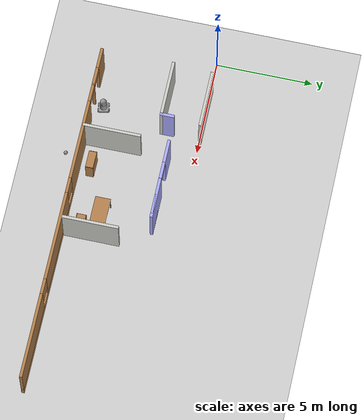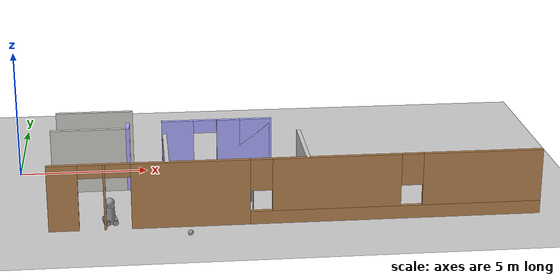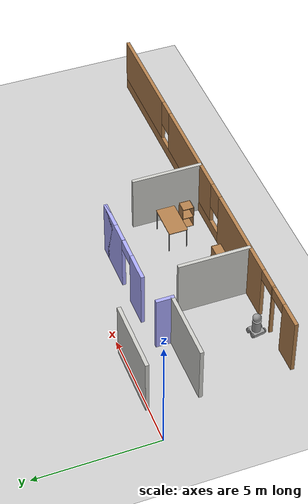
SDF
<sdf version="1.6">
 <world name="default">
  <model name="ground_plane">
   <static>1</static>
   <link name="link">
    <collision name="collision">
     <geometry><plane><normal>0 0 1</normal><size>100 100</size></plane></geometry>
     <surface>
      <contact><collide_bitmask>65535</collide_bitmask></contact>
      <friction><ode><mu>100</mu><mu2>50</mu2></ode></friction>
     </surface>
    </collision>
    <visual name="visual">
     <cast_shadows>0</cast_shadows>
     <geometry><plane><normal>0 0 1</normal><size>100 100</size></plane></geometry>
     <material>
      <script><uri>file://media/materials/scripts/gazebo.material</uri><name>Gazebo/Grey</name></script>
     </material>
    </visual>
   </link>
  </model>
  <model name="newOffice">
   <pose>10.3935 1.72643 0 0 -0 0</pose>
   <link name="Wall_1">
    <pose>0.004022 -7.44365 0 0 -0 0</pose>
    <visual name="Wall_1_Visual_0">
     <pose>-8.45097 0 1.25 0 -0 0</pose>
     <geometry><box><size>1.09805 0.15 2.5</size></box></geometry>
     <material>
      <script><uri>file://media/materials/scripts/gazebo.material</uri><name>Gazebo/Wood</name></script>
      <ambient>1 0.666667 1 1</ambient>
     </material>
     <meta><layer>0</layer></meta>
    </visual>
    <collision name="Wall_1_Collision_0">
     <geometry><box><size>1.09805 0.15 2.5</size></box></geometry>
     <pose>-8.45097 0 1.25 0 -0 0</pose>
    </collision>
    <visual name="Wall_1_Visual_1">
     <pose>-6.96251 0 1.25 0 -0 0</pose>
     <geometry><box><size>0.078887 0.15 2.5</size></box></geometry>
     <material>
      <script><uri>file://media/materials/scripts/gazebo.material</uri><name>Gazebo/Wood</name></script>
      <ambient>1 0.666667 1 1</ambient>
     </material>
     <meta><layer>0</layer></meta>
    </visual>
    <collision name="Wall_1_Collision_1">
     <geometry><box><size>0.078887 0.15 2.5</size></box></geometry>
     <pose>-6.96251 0 1.25 0 -0 0</pose>
    </collision>
    <visual name="Wall_1_Visual_2">
     <pose>-3.87848 0 1.25 0 -0 0</pose>
     <geometry><box><size>4.28916 0.15 2.5</size></box></geometry>
     <material>
      <script><uri>file://media/materials/scripts/gazebo.material</uri><name>Gazebo/Wood</name></script>
      <ambient>1 0.666667 1 1</ambient>
     </material>
     <meta><layer>0</layer></meta>
    </visual>
    <collision name="Wall_1_Collision_2">
     <geometry><box><size>4.28916 0.15 2.5</size></box></geometry>
     <pose>-3.87848 0 1.25 0 -0 0</pose>
    </collision>
    <visual name="Wall_1_Visual_3">
     <pose>3.63305 0 0.25 0 -0 0</pose>
     <geometry><box><size>10.7339 0.15 0.5</size></box></geometry>
     <material>
      <script><uri>file://media/materials/scripts/gazebo.material</uri><name>Gazebo/Wood</name></script>
      <ambient>1 0.666667 1 1</ambient>
     </material>
     <meta><layer>0</layer></meta>
    </visual>
    <collision name="Wall_1_Collision_3">
     <geometry><box><size>10.7339 0.15 0.5</size></box></geometry>
     <pose>3.63305 0 0.25 0 -0 0</pose>
    </collision>
    <visual name="Wall_1_Visual_4">
     <pose>1.41922 0 1.5 0 -0 0</pose>
     <geometry><box><size>4.70624 0.15 2</size></box></geometry>
     <material>
      <script><uri>file://media/materials/scripts/gazebo.material</uri><name>Gazebo/Wood</name></script>
      <ambient>1 0.666667 1 1</ambient>
     </material>
     <meta><layer>0</layer></meta>
    </visual>
    <collision name="Wall_1_Collision_4">
     <geometry><box><size>4.70624 0.15 2</size></box></geometry>
     <pose>1.41922 0 1.5 0 -0 0</pose>
    </collision>
    <visual name="Wall_1_Visual_5">
     <pose>6.78617 0 1.5 0 -0 0</pose>
     <geometry><box><size>4.42766 0.15 2</size></box></geometry>
     <material>
      <script><uri>file://media/materials/scripts/gazebo.material</uri><name>Gazebo/Wood</name></script>
      <ambient>1 0.666667 1 1</ambient>
     </material>
     <meta><layer>0</layer></meta>
    </visual>
    <collision name="Wall_1_Collision_5">
     <geometry><box><size>4.42766 0.15 2</size></box></geometry>
     <pose>6.78617 0 1.5 0 -0 0</pose>
    </collision>
    <visual name="Wall_1_Visual_6">
     <pose>-1.3339 0 1.9 0 -0 0</pose>
     <geometry><box><size>0.8 0.15 1.2</size></box></geometry>
     <material>
      <script><uri>file://media/materials/scripts/gazebo.material</uri><name>Gazebo/Wood</name></script>
      <ambient>1 0.666667 1 1</ambient>
     </material>
     <meta><layer>0</layer></meta>
    </visual>
    <collision name="Wall_1_Collision_6">
     <geometry><box><size>0.8 0.15 1.2</size></box></geometry>
     <pose>-1.3339 0 1.9 0 -0 0</pose>
    </collision>
    <visual name="Wall_1_Visual_7">
     <pose>4.17234 0 1.9 0 -0 0</pose>
     <geometry><box><size>0.8 0.15 1.2</size></box></geometry>
     <material>
      <script><uri>file://media/materials/scripts/gazebo.material</uri><name>Gazebo/Wood</name></script>
      <ambient>1 0.666667 1 1</ambient>
     </material>
     <meta><layer>0</layer></meta>
    </visual>
    <collision name="Wall_1_Collision_7">
     <geometry><box><size>0.8 0.15 1.2</size></box></geometry>
     <pose>4.17234 0 1.9 0 -0 0</pose>
    </collision>
    <visual name="Wall_1_Visual_8">
     <pose>-7.45195 0 2.25 0 -0 0</pose>
     <geometry><box><size>0.9 0.15 0.5</size></box></geometry>
     <material>
      <script><uri>file://media/materials/scripts/gazebo.material</uri><name>Gazebo/Wood</name></script>
      <ambient>1 0.666667 1 1</ambient>
     </material>
     <meta><layer>0</layer></meta>
    </visual>
    <collision name="Wall_1_Collision_8">
     <geometry><box><size>0.9 0.15 0.5</size></box></geometry>
     <pose>-7.45195 0 2.25 0 -0 0</pose>
    </collision>
    <visual name="Wall_1_Visual_9">
     <pose>-6.47306 0 2.25 0 -0 0</pose>
     <geometry><box><size>0.9 0.15 0.5</size></box></geometry>
     <material>
      <script><uri>file://media/materials/scripts/gazebo.material</uri><name>Gazebo/Wood</name></script>
      <ambient>1 0.666667 1 1</ambient>
     </material>
     <meta><layer>0</layer></meta>
    </visual>
    <collision name="Wall_1_Collision_9">
     <geometry><box><size>0.9 0.15 0.5</size></box></geometry>
     <pose>-6.47306 0 2.25 0 -0 0</pose>
    </collision>
   </link>
   <link name="Wall_21">
    <collision name="Wall_21_Collision">
     <geometry><box><size>3 0.15 2.5</size></box></geometry>
     <pose>0 0 1.25 0 -0 0</pose>
    </collision>
    <visual name="Wall_21_Visual">
     <pose>0 0 1.25 0 -0 0</pose>
     <geometry><box><size>3 0.15 2.5</size></box></geometry>
     <material>
      <script><uri>file://media/materials/scripts/gazebo.material</uri><name>Gazebo/CeilingTiled</name></script>
      <ambient>0.760784 0.662745 0.627451 1</ambient>
     </material>
     <meta><layer>0</layer></meta>
    </visual>
    <pose>-7.38915 -1.6804 0 0 -0 3.14159</pose>
   </link>
   <link name="Wall_25">
    <collision name="Wall_25_Collision">
     <geometry><box><size>3 0.15 2.5</size></box></geometry>
     <pose>0 0 1.25 0 -0 0</pose>
    </collision>
    <visual name="Wall_25_Visual">
     <pose>0 0 1.25 0 -0 0</pose>
     <geometry><box><size>3 0.15 2.5</size></box></geometry>
     <material>
      <script><uri>file://media/materials/scripts/gazebo.material</uri><name>Gazebo/CeilingTiled</name></script>
      <ambient>0.760784 0.662745 0.627451 1</ambient>
     </material>
     <meta><layer>0</layer></meta>
    </visual>
    <pose>-7.51668 -3.72208 0 0 -0 0</pose>
   </link>
   <link name="Wall_26">
    <collision name="Wall_26_Collision">
     <geometry><box><size>0.75 0.15 2.5</size></box></geometry>
     <pose>0 0 1.25 0 -0 0</pose>
    </collision>
    <visual name="Wall_26_Visual">
     <pose>0 0 1.25 0 -0 0</pose>
     <geometry><box><size>0.75 0.15 2.5</size></box></geometry>
     <material>
      <script><uri>file://media/materials/scripts/gazebo.material</uri><name>Gazebo/Grey</name></script>
      <ambient>0.666667 0.666667 1 1</ambient>
     </material>
     <meta><layer>0</layer></meta>
    </visual>
    <pose>-6.09169 -3.42209 0 0 -0 1.5708</pose>
   </link>
   <link name="Wall_29">
    <pose>-2.65801 -3.02959 0 0 -0 0</pose>
    <visual name="Wall_29_Visual_0">
     <pose>-1.51055 0 1.25 0 -0 0</pose>
     <geometry><box><size>1.2289 0.15 2.5</size></box></geometry>
     <material>
      <script><uri>file://media/materials/scripts/gazebo.material</uri><name>Gazebo/Grey</name></script>
      <ambient>0.666667 0.666667 1 1</ambient>
     </material>
     <meta><layer>0</layer></meta>
    </visual>
    <collision name="Wall_29_Collision_0">
     <geometry><box><size>1.2289 0.15 2.5</size></box></geometry>
     <pose>-1.51055 0 1.25 0 -0 0</pose>
    </collision>
    <visual name="Wall_29_Visual_1">
     <pose>1.06445 0 1.25 0 -0 0</pose>
     <geometry><box><size>2.1211 0.15 2.5</size></box></geometry>
     <material>
      <script><uri>file://media/materials/scripts/gazebo.material</uri><name>Gazebo/Grey</name></script>
      <ambient>0.666667 0.666667 1 1</ambient>
     </material>
     <meta><layer>0</layer></meta>
    </visual>
    <collision name="Wall_29_Collision_1">
     <geometry><box><size>2.1211 0.15 2.5</size></box></geometry>
     <pose>1.06445 0 1.25 0 -0 0</pose>
    </collision>
    <visual name="Wall_29_Visual_2">
     <pose>1.50801 0 1.25 0 -0 0</pose>
     <geometry><box><size>1.23399 0.15 2.5</size></box></geometry>
     <material>
      <script><uri>file://media/materials/scripts/gazebo.material</uri><name>Gazebo/Grey</name></script>
      <ambient>0.666667 0.666667 1 1</ambient>
     </material>
     <meta><layer>0</layer></meta>
    </visual>
    <collision name="Wall_29_Collision_2">
     <geometry><box><size>1.23399 0.15 2.5</size></box></geometry>
     <pose>1.50801 0 1.25 0 -0 0</pose>
    </collision>
    <visual name="Wall_29_Visual_3">
     <pose>-0.452546 0 2.25 0 -0 0</pose>
     <geometry><box><size>0.887117 0.15 0.5</size></box></geometry>
     <material>
      <script><uri>file://media/materials/scripts/gazebo.material</uri><name>Gazebo/Grey</name></script>
      <ambient>0.666667 0.666667 1 1</ambient>
     </material>
     <meta><layer>0</layer></meta>
    </visual>
    <collision name="Wall_29_Collision_3">
     <geometry><box><size>0.887117 0.15 0.5</size></box></geometry>
     <pose>-0.452546 0 2.25 0 -0 0</pose>
    </collision>
   </link>
   <link name="Wall_45">
    <collision name="Wall_45_Collision">
     <geometry><box><size>3 0.15 2.5</size></box></geometry>
     <pose>0 0 1.25 0 -0 0</pose>
    </collision>
    <visual name="Wall_45_Visual">
     <pose>0 0 1.25 0 -0 0</pose>
     <geometry><box><size>3 0.15 2.5</size></box></geometry>
     <material>
      <script><uri>file://media/materials/scripts/gazebo.material</uri><name>Gazebo/CeilingTiled</name></script>
      <ambient>0.760784 0.662745 0.627451 1</ambient>
     </material>
     <meta><layer>0</layer></meta>
    </visual>
    <pose>-4.70801 -5.97248 0 0 -0 1.5708</pose>
   </link>
   <link name="Wall_56">
    <collision name="Wall_56_Collision">
     <geometry><box><size>3 0.15 2.5</size></box></geometry>
     <pose>0 0 1.25 0 -0 0</pose>
    </collision>
    <visual name="Wall_56_Visual">
     <pose>0 0 1.25 0 -0 0</pose>
     <geometry><box><size>3 0.15 2.5</size></box></geometry>
     <material>
      <script><uri>file://media/materials/scripts/gazebo.material</uri><name>Gazebo/CeilingTiled</name></script>
      <ambient>0.760784 0.662745 0.627451 1</ambient>
     </material>
     <meta><layer>0</layer></meta>
    </visual>
    <pose>0.363098 -5.98452 0 0 0 -1.5708</pose>
   </link>
   <static>1</static>
  </model>
  <model name="miniRobo_clone_0">
   <link name="link_0">
    <pose>0 0 -0.145 0 -0 0</pose>
    <inertial>
     <mass>1</mass>
     <inertia>
      <ixx>0.166667</ixx>
      <ixy>0</ixy>
      <ixz>0</ixz>
      <iyy>0.166667</iyy>
      <iyz>0</iyz>
      <izz>0.166667</izz>
     </inertia>
    </inertial>
    <visual name="visual">
     <geometry><box><size>0.5 0.5 0.125</size></box></geometry>
     <material>
      <lighting>1</lighting>
      <script><uri>file://media/materials/scripts/gazebo.material</uri><name>Gazebo/Grey</name></script>
      <shader type="pixel"><normal_map>__default__</normal_map></shader>
      <ambient>0.3 0.3 0.3 1</ambient>
      <diffuse>0.7 0.7 0.7 1</diffuse>
      <specular>0.01 0.01 0.01 1</specular>
      <emissive>0 0 0 1</emissive>
     </material>
    </visual>
    <collision name="collision">
     <geometry><box><size>0.5 0.5 0.125</size></box></geometry>
     <surface>
      <friction>
       <ode><mu>1</mu><mu2>1</mu2><fdir1>0 0 0</fdir1><slip1>0</slip1><slip2>0</slip2></ode>
       <torsional>
        <coefficient>1</coefficient>
        <patch_radius>0</patch_radius>
        <surface_radius>0</surface_radius>
        <use_patch_radius>1</use_patch_radius>
        <ode><slip>0</slip></ode>
       </torsional>
      </friction>
      <bounce><restitution_coefficient>0</restitution_coefficient><threshold>1e+06</threshold></bounce>
      <contact>
       <collide_without_contact>0</collide_without_contact>
       <collide_without_contact_bitmask>1</collide_without_contact_bitmask>
       <collide_bitmask>1</collide_bitmask>
       <ode>
        <soft_cfm>0</soft_cfm>
        <soft_erp>0.2</soft_erp>
        <kp>1e+13</kp>
        <kd>1</kd>
        <max_vel>0.01</max_vel>
        <min_depth>0</min_depth>
       </ode>
       <bullet>
        <split_impulse>1</split_impulse>
        <split_impulse_penetration_threshold>-0.01</split_impulse_penetration_threshold>
        <soft_cfm>0</soft_cfm>
        <soft_erp>0.2</soft_erp>
        <kp>1e+13</kp>
        <kd>1</kd>
       </bullet>
      </contact>
     </surface>
    </collision>
   </link>
   <link name="link_1_clone">
    <pose>0.15 -0.27501 -0.145 0 -0 0</pose>
    <inertial>
     <mass>1</mass>
     <inertia><ixx>0.145833</ixx><ixy>0</ixy><ixz>0</ixz><iyy>0.145833</iyy><iyz>0</iyz><izz>0.125</izz></inertia>
    </inertial>
    <visual name="visual">
     <pose>0 0 0 1.5707 -0 0</pose>
     <geometry><cylinder><radius>0.1</radius><length>0.05</length></cylinder></geometry>
     <material>
      <lighting>1</lighting>
      <script><uri>file://media/materials/scripts/gazebo.material</uri><name>Gazebo/Grey</name></script>
      <shader type="pixel"><normal_map>__default__</normal_map></shader>
      <ambient>0.3 0.3 0.3 1</ambient>
      <diffuse>0.7 0.7 0.7 1</diffuse>
      <specular>0.01 0.01 0.01 1</specular>
      <emissive>0 0 0 1</emissive>
     </material>
    </visual>
    <collision name="collision">
     <pose>0 0 0 1.5707 -0 0</pose>
     <geometry><cylinder><radius>0.1</radius><length>0.05</length></cylinder></geometry>
     <surface>
      <friction>
       <ode><mu>1</mu><mu2>1</mu2><fdir1>0 0 0</fdir1><slip1>0</slip1><slip2>0</slip2></ode>
       <torsional>
        <coefficient>1</coefficient>
        <patch_radius>0</patch_radius>
        <surface_radius>0</surface_radius>
        <use_patch_radius>1</use_patch_radius>
        <ode><slip>0</slip></ode>
       </torsional>
      </friction>
      <bounce><restitution_coefficient>0</restitution_coefficient><threshold>1e+06</threshold></bounce>
      <contact>
       <collide_without_contact>0</collide_without_contact>
       <collide_without_contact_bitmask>1</collide_without_contact_bitmask>
       <collide_bitmask>1</collide_bitmask>
       <ode>
        <soft_cfm>0</soft_cfm>
        <soft_erp>0.2</soft_erp>
        <kp>1e+13</kp>
        <kd>1</kd>
        <max_vel>0.01</max_vel>
        <min_depth>0</min_depth>
       </ode>
       <bullet>
        <split_impulse>1</split_impulse>
        <split_impulse_penetration_threshold>-0.01</split_impulse_penetration_threshold>
        <soft_cfm>0</soft_cfm>
        <soft_erp>0.2</soft_erp>
        <kp>1e+13</kp>
        <kd>1</kd>
       </bullet>
      </contact>
     </surface>
    </collision>
   </link>
   <link name="link_1_clone_0">
    <pose>-0.15 0.27501 -0.145 0 -0 0</pose>
    <inertial>
     <mass>1</mass>
     <inertia><ixx>0.145833</ixx><ixy>0</ixy><ixz>0</ixz><iyy>0.145833</iyy><iyz>0</iyz><izz>0.125</izz></inertia>
    </inertial>
    <visual name="visual">
     <pose>0 0 0 1.5707 -0 0</pose>
     <geometry><cylinder><radius>0.1</radius><length>0.05</length></cylinder></geometry>
     <material>
      <lighting>1</lighting>
      <script><uri>file://media/materials/scripts/gazebo.material</uri><name>Gazebo/Grey</name></script>
      <shader type="pixel"><normal_map>__default__</normal_map></shader>
      <ambient>0.3 0.3 0.3 1</ambient>
      <diffuse>0.7 0.7 0.7 1</diffuse>
      <specular>0.01 0.01 0.01 1</specular>
      <emissive>0 0 0 1</emissive>
     </material>
    </visual>
    <collision name="collision">
     <pose>0 0 0 1.5707 -0 0</pose>
     <geometry><cylinder><radius>0.1</radius><length>0.05</length></cylinder></geometry>
     <surface>
      <friction>
       <ode><mu>1</mu><mu2>1</mu2><fdir1>0 0 0</fdir1><slip1>0</slip1><slip2>0</slip2></ode>
       <torsional>
        <coefficient>1</coefficient>
        <patch_radius>0</patch_radius>
        <surface_radius>0</surface_radius>
        <use_patch_radius>1</use_patch_radius>
        <ode><slip>0</slip></ode>
       </torsional>
      </friction>
      <bounce><restitution_coefficient>0</restitution_coefficient><threshold>1e+06</threshold></bounce>
      <contact>
       <collide_without_contact>0</collide_without_contact>
       <collide_without_contact_bitmask>1</collide_without_contact_bitmask>
       <collide_bitmask>1</collide_bitmask>
       <ode>
        <soft_cfm>0</soft_cfm>
        <soft_erp>0.2</soft_erp>
        <kp>1e+13</kp>
        <kd>1</kd>
        <max_vel>0.01</max_vel>
        <min_depth>0</min_depth>
       </ode>
       <bullet>
        <split_impulse>1</split_impulse>
        <split_impulse_penetration_threshold>-0.01</split_impulse_penetration_threshold>
        <soft_cfm>0</soft_cfm>
        <soft_erp>0.2</soft_erp>
        <kp>1e+13</kp>
        <kd>1</kd>
       </bullet>
      </contact>
     </surface>
    </collision>
   </link>
   <link name="link_1_clone_1">
    <pose>0.15 0.27501 -0.145 0 -0 0</pose>
    <inertial>
     <mass>1</mass>
     <inertia><ixx>0.145833</ixx><ixy>0</ixy><ixz>0</ixz><iyy>0.145833</iyy><iyz>0</iyz><izz>0.125</izz></inertia>
    </inertial>
    <visual name="visual">
     <pose>0 0 0 1.5707 -0 0</pose>
     <geometry><cylinder><radius>0.1</radius><length>0.05</length></cylinder></geometry>
     <material>
      <lighting>1</lighting>
      <script><uri>file://media/materials/scripts/gazebo.material</uri><name>Gazebo/Grey</name></script>
      <shader type="pixel"><normal_map>__default__</normal_map></shader>
      <ambient>0.3 0.3 0.3 1</ambient>
      <diffuse>0.7 0.7 0.7 1</diffuse>
      <specular>0.01 0.01 0.01 1</specular>
      <emissive>0 0 0 1</emissive>
     </material>
    </visual>
    <collision name="collision">
     <pose>0 0 0 1.5707 -0 0</pose>
     <geometry><cylinder><radius>0.1</radius><length>0.05</length></cylinder></geometry>
     <surface>
      <friction>
       <ode><mu>1</mu><mu2>1</mu2><fdir1>0 0 0</fdir1><slip1>0</slip1><slip2>0</slip2></ode>
       <torsional>
        <coefficient>1</coefficient>
        <patch_radius>0</patch_radius>
        <surface_radius>0</surface_radius>
        <use_patch_radius>1</use_patch_radius>
        <ode><slip>0</slip></ode>
       </torsional>
      </friction>
      <bounce><restitution_coefficient>0</restitution_coefficient><threshold>1e+06</threshold></bounce>
      <contact>
       <collide_without_contact>0</collide_without_contact>
       <collide_without_contact_bitmask>1</collide_without_contact_bitmask>
       <collide_bitmask>1</collide_bitmask>
       <ode>
        <soft_cfm>0</soft_cfm>
        <soft_erp>0.2</soft_erp>
        <kp>1e+13</kp>
        <kd>1</kd>
        <max_vel>0.01</max_vel>
        <min_depth>0</min_depth>
       </ode>
       <bullet>
        <split_impulse>1</split_impulse>
        <split_impulse_penetration_threshold>-0.01</split_impulse_penetration_threshold>
        <soft_cfm>0</soft_cfm>
        <soft_erp>0.2</soft_erp>
        <kp>1e+13</kp>
        <kd>1</kd>
       </bullet>
      </contact>
     </surface>
    </collision>
   </link>
   <link name="link_1_clone_1_clone">
    <pose>-0.15 -0.27501 -0.145 0 -0 0</pose>
    <inertial>
     <mass>1</mass>
     <inertia><ixx>0.145833</ixx><ixy>0</ixy><ixz>0</ixz><iyy>0.145833</iyy><iyz>0</iyz><izz>0.125</izz></inertia>
    </inertial>
    <visual name="visual">
     <pose>0 0 0 1.5707 -0 0</pose>
     <geometry><cylinder><radius>0.1</radius><length>0.05</length></cylinder></geometry>
     <material>
      <lighting>1</lighting>
      <script><uri>file://media/materials/scripts/gazebo.material</uri><name>Gazebo/Grey</name></script>
      <shader type="pixel"><normal_map>__default__</normal_map></shader>
      <ambient>0.3 0.3 0.3 1</ambient>
      <diffuse>0.7 0.7 0.7 1</diffuse>
      <specular>0.01 0.01 0.01 1</specular>
      <emissive>0 0 0 1</emissive>
     </material>
    </visual>
    <collision name="collision">
     <pose>0 0 0 1.5707 -0 0</pose>
     <geometry><cylinder><radius>0.1</radius><length>0.05</length></cylinder></geometry>
     <surface>
      <friction>
       <ode><mu>1</mu><mu2>1</mu2><fdir1>0 0 0</fdir1><slip1>0</slip1><slip2>0</slip2></ode>
       <torsional>
        <coefficient>1</coefficient>
        <patch_radius>0</patch_radius>
        <surface_radius>0</surface_radius>
        <use_patch_radius>1</use_patch_radius>
        <ode><slip>0</slip></ode>
       </torsional>
      </friction>
      <bounce><restitution_coefficient>0</restitution_coefficient><threshold>1e+06</threshold></bounce>
      <contact>
       <collide_without_contact>0</collide_without_contact>
       <collide_without_contact_bitmask>1</collide_without_contact_bitmask>
       <collide_bitmask>1</collide_bitmask>
       <ode>
        <soft_cfm>0</soft_cfm>
        <soft_erp>0.2</soft_erp>
        <kp>1e+13</kp>
        <kd>1</kd>
        <max_vel>0.01</max_vel>
        <min_depth>0</min_depth>
       </ode>
       <bullet>
        <split_impulse>1</split_impulse>
        <split_impulse_penetration_threshold>-0.01</split_impulse_penetration_threshold>
        <soft_cfm>0</soft_cfm>
        <soft_erp>0.2</soft_erp>
        <kp>1e+13</kp>
        <kd>1</kd>
       </bullet>
      </contact>
     </surface>
    </collision>
   </link>
   <link name="link_2">
    <pose>0 0 0.1625 0 -0 0</pose>
    <inertial>
     <mass>1</mass>
     <inertia><ixx>0.145833</ixx><ixy>0</ixy><ixz>0</ixz><iyy>0.145833</iyy><iyz>0</iyz><izz>0.125</izz></inertia>
    </inertial>
    <visual name="visual">
     <geometry><cylinder><radius>0.175</radius><length>0.5</length></cylinder></geometry>
     <material>
      <lighting>1</lighting>
      <script><uri>file://media/materials/scripts/gazebo.material</uri><name>Gazebo/Grey</name></script>
      <shader type="pixel"><normal_map>__default__</normal_map></shader>
      <ambient>0.3 0.3 0.3 1</ambient>
      <diffuse>0.7 0.7 0.7 1</diffuse>
      <specular>0.01 0.01 0.01 1</specular>
      <emissive>0 0 0 1</emissive>
     </material>
    </visual>
    <collision name="collision">
     <geometry><cylinder><radius>0.175</radius><length>0.5</length></cylinder></geometry>
     <surface>
      <friction>
       <ode><mu>1</mu><mu2>1</mu2><fdir1>0 0 0</fdir1><slip1>0</slip1><slip2>0</slip2></ode>
       <torsional>
        <coefficient>1</coefficient>
        <patch_radius>0</patch_radius>
        <surface_radius>0</surface_radius>
        <use_patch_radius>1</use_patch_radius>
        <ode><slip>0</slip></ode>
       </torsional>
      </friction>
      <bounce><restitution_coefficient>0</restitution_coefficient><threshold>1e+06</threshold></bounce>
      <contact>
       <collide_without_contact>0</collide_without_contact>
       <collide_without_contact_bitmask>1</collide_without_contact_bitmask>
       <collide_bitmask>1</collide_bitmask>
       <ode>
        <soft_cfm>0</soft_cfm>
        <soft_erp>0.2</soft_erp>
        <kp>1e+13</kp>
        <kd>1</kd>
        <max_vel>0.01</max_vel>
        <min_depth>0</min_depth>
       </ode>
       <bullet>
        <split_impulse>1</split_impulse>
        <split_impulse_penetration_threshold>-0.01</split_impulse_penetration_threshold>
        <soft_cfm>0</soft_cfm>
        <soft_erp>0.2</soft_erp>
        <kp>1e+13</kp>
        <kd>1</kd>
       </bullet>
      </contact>
     </surface>
    </collision>
   </link>
   <link name="link_3">
    <pose>0 0 0.5625 0 -0 0</pose>
    <inertial>
     <mass>1</mass>
     <inertia><ixx>0.1</ixx><ixy>0</ixy><ixz>0</ixz><iyy>0.1</iyy><iyz>0</iyz><izz>0.1</izz></inertia>
    </inertial>
    <visual name="visual">
     <geometry><sphere><radius>0.175</radius></sphere></geometry>
     <material>
      <lighting>1</lighting>
      <script><uri>file://media/materials/scripts/gazebo.material</uri><name>Gazebo/Grey</name></script>
      <shader type="pixel"><normal_map>__default__</normal_map></shader>
      <ambient>0.3 0.3 0.3 1</ambient>
      <diffuse>0.7 0.7 0.7 1</diffuse>
      <specular>0.01 0.01 0.01 1</specular>
      <emissive>0 0 0 1</emissive>
     </material>
    </visual>
    <collision name="collision">
     <geometry><sphere><radius>0.175</radius></sphere></geometry>
     <surface>
      <friction>
       <ode><mu>1</mu><mu2>1</mu2><fdir1>0 0 0</fdir1><slip1>0</slip1><slip2>0</slip2></ode>
       <torsional>
        <coefficient>1</coefficient>
        <patch_radius>0</patch_radius>
        <surface_radius>0</surface_radius>
        <use_patch_radius>1</use_patch_radius>
        <ode><slip>0</slip></ode>
       </torsional>
      </friction>
      <bounce><restitution_coefficient>0</restitution_coefficient><threshold>1e+06</threshold></bounce>
      <contact>
       <collide_without_contact>0</collide_without_contact>
       <collide_without_contact_bitmask>1</collide_without_contact_bitmask>
       <collide_bitmask>1</collide_bitmask>
       <ode>
        <soft_cfm>0</soft_cfm>
        <soft_erp>0.2</soft_erp>
        <kp>1e+13</kp>
        <kd>1</kd>
        <max_vel>0.01</max_vel>
        <min_depth>0</min_depth>
       </ode>
       <bullet>
        <split_impulse>1</split_impulse>
        <split_impulse_penetration_threshold>-0.01</split_impulse_penetration_threshold>
        <soft_cfm>0</soft_cfm>
        <soft_erp>0.2</soft_erp>
        <kp>1e+13</kp>
        <kd>1</kd>
       </bullet>
      </contact>
     </surface>
    </collision>
   </link>
   <joint name="link_0_JOINT_1" type="revolute">
    <parent>link_0</parent>
    <child>link_1_clone_0</child>
    <axis>
     <xyz>0 0 1</xyz>
     <use_parent_model_frame>0</use_parent_model_frame>
     <limit>
      <lower>-1.79769e+308</lower>
      <upper>1.79769e+308</upper>
      <effort>-1</effort>
      <velocity>-1</velocity>
     </limit>
     <dynamics>
      <spring_reference>0</spring_reference>
      <spring_stiffness>0</spring_stiffness>
      <damping>0</damping>
     </dynamics>
    </axis>
    <physics>
     <ode><limit><cfm>0</cfm><erp>0.2</erp></limit><suspension><cfm>0</cfm><erp>0.2</erp></suspension></ode>
    </physics>
   </joint>
   <joint name="link_0_JOINT_2" type="revolute">
    <parent>link_0</parent>
    <child>link_1_clone_1_clone</child>
    <axis>
     <xyz>0 0 1</xyz>
     <use_parent_model_frame>0</use_parent_model_frame>
     <limit>
      <lower>-1.79769e+308</lower>
      <upper>1.79769e+308</upper>
      <effort>-1</effort>
      <velocity>-1</velocity>
     </limit>
     <dynamics>
      <spring_reference>0</spring_reference>
      <spring_stiffness>0</spring_stiffness>
      <damping>0</damping>
     </dynamics>
    </axis>
    <physics>
     <ode><limit><cfm>0</cfm><erp>0.2</erp></limit><suspension><cfm>0</cfm><erp>0.2</erp></suspension></ode>
    </physics>
   </joint>
   <joint name="link_0_JOINT_3" type="revolute">
    <parent>link_0</parent>
    <child>link_1_clone_1</child>
    <axis>
     <xyz>0 0 1</xyz>
     <use_parent_model_frame>0</use_parent_model_frame>
     <limit>
      <lower>-1.79769e+308</lower>
      <upper>1.79769e+308</upper>
      <effort>-1</effort>
      <velocity>-1</velocity>
     </limit>
     <dynamics>
      <spring_reference>0</spring_reference>
      <spring_stiffness>0</spring_stiffness>
      <damping>0</damping>
     </dynamics>
    </axis>
    <physics>
     <ode><limit><cfm>0</cfm><erp>0.2</erp></limit><suspension><cfm>0</cfm><erp>0.2</erp></suspension></ode>
    </physics>
   </joint>
   <joint name="link_0_JOINT_4" type="revolute">
    <parent>link_0</parent>
    <child>link_1_clone</child>
    <axis>
     <xyz>0 0 1</xyz>
     <use_parent_model_frame>0</use_parent_model_frame>
     <limit>
      <lower>-1.79769e+308</lower>
      <upper>1.79769e+308</upper>
      <effort>-1</effort>
      <velocity>-1</velocity>
     </limit>
     <dynamics>
      <spring_reference>0</spring_reference>
      <spring_stiffness>0</spring_stiffness>
      <damping>0</damping>
     </dynamics>
    </axis>
    <physics>
     <ode><limit><cfm>0</cfm><erp>0.2</erp></limit><suspension><cfm>0</cfm><erp>0.2</erp></suspension></ode>
    </physics>
   </joint>
   <joint name="link_0_JOINT_5" type="fixed">
    <parent>link_0</parent>
    <child>link_2</child>
    <physics>
     <ode><limit><cfm>0</cfm><erp>0.2</erp></limit><suspension><cfm>0</cfm><erp>0.2</erp></suspension></ode>
    </physics>
   </joint>
   <joint name="link_2_JOINT_6" type="fixed">
    <parent>link_2</parent>
    <child>link_3</child>
    <physics>
     <ode><limit><cfm>0</cfm><erp>0.2</erp></limit><suspension><cfm>0</cfm><erp>0.2</erp></suspension></ode>
    </physics>
   </joint>
   <static>0</static>
   <pose>3.59445 -5.19368 0.245003 -0 -3e-06 0.167325</pose>
  </model>
  <model name="table_clone">
   <static>1</static>
   <link name="link">
    <collision name="surface">
     <pose>0 0 1 0 -0 0</pose>
     <geometry><box><size>1.5 0.8 0.03</size></box></geometry>
     <surface><friction><ode><mu>0.6</mu><mu2>0.6</mu2></ode></friction></surface>
    </collision>
    <visual name="visual1">
     <pose>0 0 1 0 -0 0</pose>
     <geometry><box><size>1.5 0.8 0.03</size></box></geometry>
     <material>
      <script><uri>file://media/materials/scripts/gazebo.material</uri><name>Gazebo/Wood</name></script>
     </material>
    </visual>
    <collision name="front_left_leg">
     <pose>0.68 0.38 0.5 0 -0 0</pose>
     <geometry><cylinder><radius>0.02</radius><length>1</length></cylinder></geometry>
    </collision>
    <visual name="front_left_leg">
     <pose>0.68 0.38 0.5 0 -0 0</pose>
     <geometry><cylinder><radius>0.02</radius><length>1</length></cylinder></geometry>
     <material>
      <script><uri>file://media/materials/scripts/gazebo.material</uri><name>Gazebo/Grey</name></script>
     </material>
    </visual>
    <collision name="front_right_leg">
     <pose>0.68 -0.38 0.5 0 -0 0</pose>
     <geometry><cylinder><radius>0.02</radius><length>1</length></cylinder></geometry>
    </collision>
    <visual name="front_right_leg">
     <pose>0.68 -0.38 0.5 0 -0 0</pose>
     <geometry><cylinder><radius>0.02</radius><length>1</length></cylinder></geometry>
     <material>
      <script><uri>file://media/materials/scripts/gazebo.material</uri><name>Gazebo/Grey</name></script>
     </material>
    </visual>
    <collision name="back_right_leg">
     <pose>-0.68 -0.38 0.5 0 -0 0</pose>
     <geometry><cylinder><radius>0.02</radius><length>1</length></cylinder></geometry>
    </collision>
    <visual name="back_right_leg">
     <pose>-0.68 -0.38 0.5 0 -0 0</pose>
     <geometry><cylinder><radius>0.02</radius><length>1</length></cylinder></geometry>
     <material>
      <script><uri>file://media/materials/scripts/gazebo.material</uri><name>Gazebo/Grey</name></script>
     </material>
    </visual>
    <collision name="back_left_leg">
     <pose>-0.68 0.38 0.5 0 -0 0</pose>
     <geometry><cylinder><radius>0.02</radius><length>1</length></cylinder></geometry>
    </collision>
    <visual name="back_left_leg">
     <pose>-0.68 0.38 0.5 0 -0 0</pose>
     <geometry><cylinder><radius>0.02</radius><length>1</length></cylinder></geometry>
     <material>
      <script><uri>file://media/materials/scripts/gazebo.material</uri><name>Gazebo/Grey</name></script>
     </material>
    </visual>
   </link>
   <pose>9.55114 -4.01748 0 0 -0 0</pose>
  </model>
  <model name="cabinet_clone">
   <static>1</static>
   <link name="cabinet_bottom_plate">
    <inertial>
     <pose>0 0 -1 0 -0 0</pose>
     <inertia><ixx>2.05</ixx><ixy>0</ixy><ixz>0</ixz><iyy>2.05</iyy><iyz>0</iyz><izz>2.05</izz></inertia>
     <mass>25</mass>
    </inertial>
    <collision name="cabinet_bottom_plate_geom">
     <pose>0 0 0.01 0 -0 0</pose>
     <geometry><box><size>0.45 0.45 0.02</size></box></geometry>
    </collision>
    <visual name="cabinet_bottom_plate_geom_visual">
     <pose>0 0 0.01 0 -0 0</pose>
     <geometry><box><size>0.45 0.45 0.02</size></box></geometry>
     <material>
      <script><uri>file://media/materials/scripts/gazebo.material</uri><name>Gazebo/Wood</name></script>
     </material>
    </visual>
    <collision name="cabinet_bottom_plate_geom_cabinet_back_plate">
     <pose>0.235 0 0.51 0 -0 0</pose>
     <geometry><box><size>0.02 0.45 1.02</size></box></geometry>
    </collision>
    <visual name="cabinet_bottom_plate_geom_cabinet_back_plate_visual">
     <pose>0.235 0 0.51 0 -0 0</pose>
     <geometry><box><size>0.02 0.45 1.02</size></box></geometry>
     <material>
      <script><uri>file://media/materials/scripts/gazebo.material</uri><name>Gazebo/Wood</name></script>
     </material>
    </visual>
    <collision name="cabinet_bottom_plate_geom_cabinet_left_plate">
     <pose>0 0.235 0.51 0 -0 0</pose>
     <geometry><box><size>0.45 0.02 1.02</size></box></geometry>
    </collision>
    <visual name="cabinet_bottom_plate_geom_cabinet_left_plate_visual">
     <pose>0 0.235 0.51 0 -0 0</pose>
     <geometry><box><size>0.45 0.02 1.02</size></box></geometry>
     <material>
      <script><uri>file://media/materials/scripts/gazebo.material</uri><name>Gazebo/Wood</name></script>
     </material>
    </visual>
    <collision name="cabinet_bottom_plate_geom_cabinet_middle_plate">
     <pose>0 0 0.51 0 -0 0</pose>
     <geometry><box><size>0.45 0.45 0.02</size></box></geometry>
    </collision>
    <visual name="cabinet_bottom_plate_geom_cabinet_middle_plate_visual">
     <pose>0 0 0.51 0 -0 0</pose>
     <geometry><box><size>0.45 0.45 0.02</size></box></geometry>
     <material>
      <script><uri>file://media/materials/scripts/gazebo.material</uri><name>Gazebo/Wood</name></script>
     </material>
    </visual>
    <collision name="cabinet_bottom_plate_geom_cabinet_right_plate">
     <pose>0 -0.235 0.51 0 -0 0</pose>
     <geometry><box><size>0.45 0.02 1.02</size></box></geometry>
    </collision>
    <visual name="cabinet_bottom_plate_geom_cabinet_right_plate_visual">
     <pose>0 -0.235 0.51 0 -0 0</pose>
     <geometry><box><size>0.45 0.02 1.02</size></box></geometry>
     <material>
      <script><uri>file://media/materials/scripts/gazebo.material</uri><name>Gazebo/Wood</name></script>
     </material>
    </visual>
    <collision name="cabinet_bottom_plate_geom_cabinet_top_plate">
     <pose>0 0 1.01 0 -0 0</pose>
     <geometry><box><size>0.45 0.45 0.02</size></box></geometry>
    </collision>
    <visual name="cabinet_bottom_plate_geom_cabinet_top_plate_visual">
     <pose>0 0 1.01 0 -0 0</pose>
     <geometry><box><size>0.45 0.45 0.02</size></box></geometry>
     <material>
      <script><uri>file://media/materials/scripts/gazebo.material</uri><name>Gazebo/Wood</name></script>
     </material>
    </visual>
   </link>
   <pose>10.1247 -4.88072 0 0 -0 0</pose>
  </model>
  <model name="bookshelf_clone">
   <static>1</static>
   <link name="link">
    <inertial><mass>1</mass></inertial>
    <collision name="back">
     <pose>0 0.005 0.6 0 -0 0</pose>
     <geometry><box><size>0.9 0.01 1.2</size></box></geometry>
    </collision>
    <visual name="visual1">
     <pose>0 0.005 0.6 0 -0 0</pose>
     <geometry><box><size>0.9 0.01 1.2</size></box></geometry>
     <material>
      <script><uri>file://media/materials/scripts/gazebo.material</uri><name>Gazebo/Wood</name></script>
     </material>
    </visual>
    <collision name="left_side">
     <pose>0.45 -0.195 0.6 0 -0 0</pose>
     <geometry><box><size>0.02 0.4 1.2</size></box></geometry>
    </collision>
    <visual name="visual2">
     <pose>0.45 -0.195 0.6 0 -0 0</pose>
     <geometry><box><size>0.02 0.4 1.2</size></box></geometry>
     <material>
      <script><uri>file://media/materials/scripts/gazebo.material</uri><name>Gazebo/Wood</name></script>
     </material>
    </visual>
    <collision name="right_side">
     <pose>-0.45 -0.195 0.6 0 -0 0</pose>
     <geometry><box><size>0.02 0.4 1.2</size></box></geometry>
    </collision>
    <visual name="visual3">
     <pose>-0.45 -0.195 0.6 0 -0 0</pose>
     <geometry><box><size>0.02 0.4 1.2</size></box></geometry>
     <material>
      <script><uri>file://media/materials/scripts/gazebo.material</uri><name>Gazebo/Wood</name></script>
     </material>
    </visual>
    <collision name="bottom">
     <pose>0 -0.195 0.03 0 -0 0</pose>
     <geometry><box><size>0.88 0.4 0.06</size></box></geometry>
    </collision>
    <visual name="visual4">
     <pose>0 -0.195 0.03 0 -0 0</pose>
     <geometry><box><size>0.88 0.4 0.06</size></box></geometry>
     <material>
      <script><uri>file://media/materials/scripts/gazebo.material</uri><name>Gazebo/Wood</name></script>
     </material>
    </visual>
    <collision name="top">
     <pose>0 -0.195 1.19 0 -0 0</pose>
     <geometry><box><size>0.88 0.4 0.02</size></box></geometry>
    </collision>
    <visual name="visual5">
     <pose>0 -0.195 1.19 0 -0 0</pose>
     <geometry><box><size>0.88 0.4 0.02</size></box></geometry>
     <material>
      <script><uri>file://media/materials/scripts/gazebo.material</uri><name>Gazebo/Wood</name></script>
     </material>
    </visual>
    <collision name="low_shelf">
     <pose>0 -0.195 0.43 0 -0 0</pose>
     <geometry><box><size>0.88 0.4 0.02</size></box></geometry>
    </collision>
    <visual name="visual6">
     <pose>0 -0.195 0.43 0 -0 0</pose>
     <geometry><box><size>0.88 0.4 0.02</size></box></geometry>
     <material>
      <script><uri>file://media/materials/scripts/gazebo.material</uri><name>Gazebo/Wood</name></script>
     </material>
    </visual>
    <collision name="high_shelf">
     <pose>0 -0.195 0.8 0 -0 0</pose>
     <geometry><box><size>0.88 0.4 0.02</size></box></geometry>
    </collision>
    <visual name="visual7">
     <pose>0 -0.195 0.8 0 -0 0</pose>
     <geometry><box><size>0.88 0.4 0.02</size></box></geometry>
     <material>
      <script><uri>file://media/materials/scripts/gazebo.material</uri><name>Gazebo/Wood</name></script>
     </material>
    </visual>
   </link>
   <pose>6.96523 -4.86782 0 0 -0 0</pose>
  </model>
  <model name="unit_sphere">
   <link name="link">
    <inertial>
     <mass>1</mass>
     <inertia><ixx>0.1</ixx><ixy>0</ixy><ixz>0</ixz><iyy>0.1</iyy><iyz>0</iyz><izz>0.1</izz></inertia>
    </inertial>
    <visual name="visual">
     <geometry><sphere><radius>0.1</radius></sphere></geometry>
     <material>
      <script><name>Gazebo/Grey</name><uri>file://media/materials/scripts/gazebo.material</uri></script>
      <shader type="pixel"><normal_map>__default__</normal_map></shader>
      <ambient>1 1 1 1</ambient>
      <diffuse>1 1 1 1</diffuse>
      <specular>1 1 1 1</specular>
      <emissive>1 1 1 1</emissive>
     </material>
    </visual>
    <collision name="collision">
     <geometry><sphere><radius>0.1</radius></sphere></geometry>
     <surface>
      <friction>
       <ode><mu>1</mu><mu2>1</mu2><fdir1>0 0 0</fdir1><slip1>0</slip1><slip2>0</slip2></ode>
       <torsional>
        <coefficient>1</coefficient>
        <patch_radius>0</patch_radius>
        <surface_radius>0</surface_radius>
        <use_patch_radius>1</use_patch_radius>
        <ode><slip>0</slip></ode>
       </torsional>
      </friction>
      <bounce><restitution_coefficient>0</restitution_coefficient><threshold>1e+06</threshold></bounce>
      <contact>
       <collide_without_contact>0</collide_without_contact>
       <collide_without_contact_bitmask>1</collide_without_contact_bitmask>
       <collide_bitmask>1</collide_bitmask>
       <ode>
        <soft_cfm>0</soft_cfm>
        <soft_erp>0.2</soft_erp>
        <kp>1e+13</kp>
        <kd>1</kd>
        <max_vel>0.01</max_vel>
        <min_depth>0</min_depth>
       </ode>
       <bullet>
        <split_impulse>1</split_impulse>
        <split_impulse_penetration_threshold>-0.01</split_impulse_penetration_threshold>
        <soft_cfm>0</soft_cfm>
        <soft_erp>0.2</soft_erp>
        <kp>1e+13</kp>
        <kd>1</kd>
       </bullet>
      </contact>
     </surface>
    </collision>
   </link>
   <static>0</static>
   <pose>6.45046 -6.53693 0.1 0 -0 0</pose>
  </model>
 </world>
</sdf>
